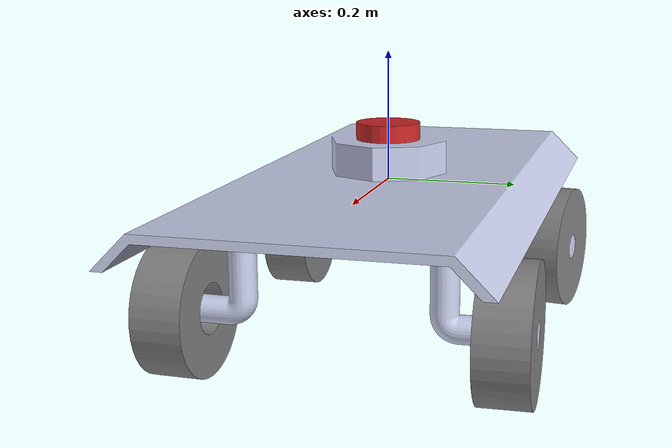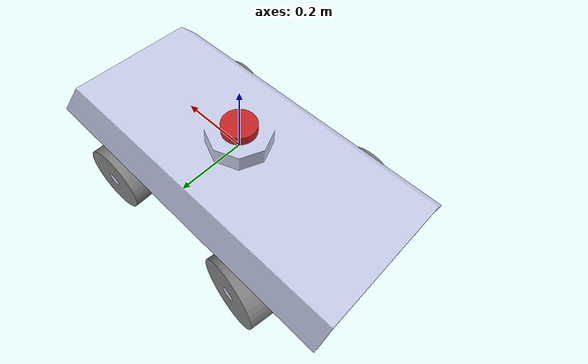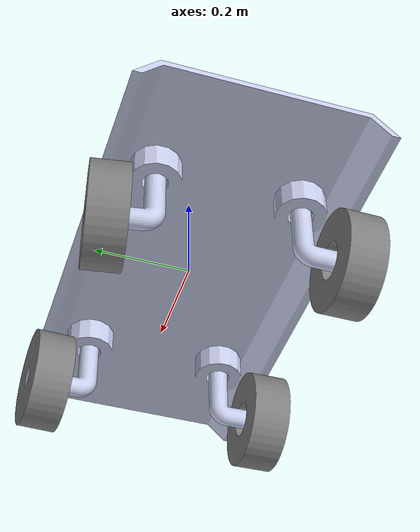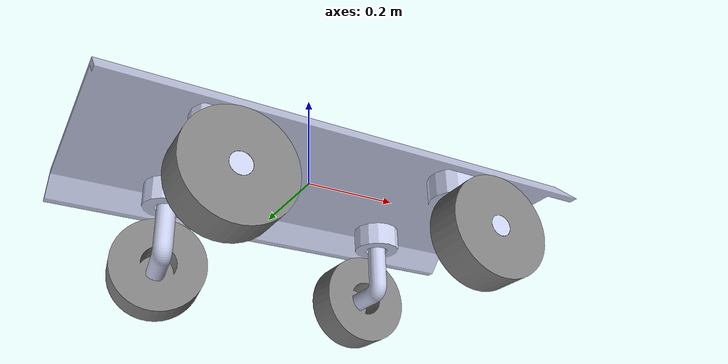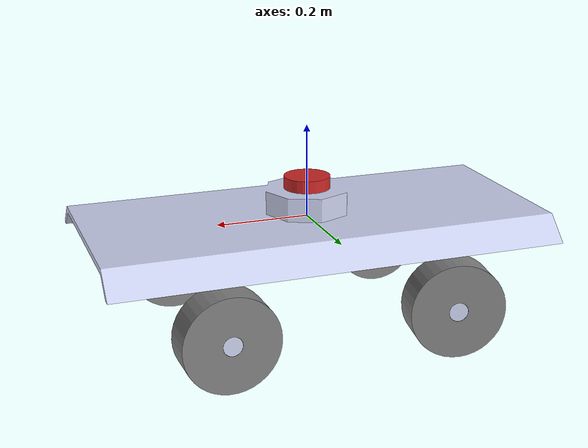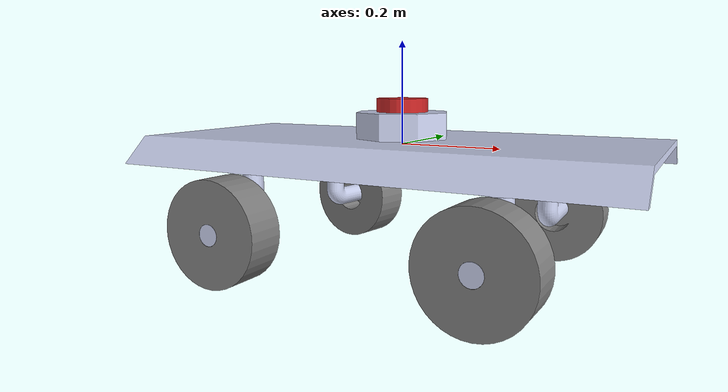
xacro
<?xml version="1.0"?>
<robot
  name="bot_car" xmlns:xacro="http://ros.org/wiki/xacro">
  # Add this before base link
    <link name="dummy_link"></link>

    # Add this after base link
    <joint name="dummy_joint" type="fixed">
        <origin rpy="0 0 0" xyz="0 0 0" />
        <parent link="dummy_link"/>
        <child link="base_link"/>
    </joint>
    <link
      name="base_link">
      <inertial>
        <origin
          xyz="0 -2.2204E-16 0.0025599"
          rpy="0 0 0" />
        <mass
          value="8.9305" />
        <inertia
          ixx="0.17655"
          ixy="2.3915E-16"
          ixz="1.4725E-17"
          iyy="0.58847"
          iyz="-7.9055E-17"
          izz="0.75707" />
      </inertial>
      <visual>
        <origin
          xyz="0 0 0"
          rpy="0 0 0" />
        <geometry>
          <mesh
            filename="package://bot_car/meshes/base_link.STL" />
        </geometry>
        <material
          name="">
          <color
            rgba="0.79216 0.81961 0.93333 1" />
        </material>
      </visual>
      <collision>
        <origin
          xyz="0 0 0"
          rpy="0 0 0" />
        <geometry>
          <mesh
            filename="package://bot_car/meshes/base_link.STL" />
        </geometry>
      </collision>
    </link>
    <link
      name="axel1_Link">
      <inertial>
        <origin
          xyz="0.02952 -7.5228E-05 0.10977"
          rpy="0 0 0" />
        <mass
          value="0.35112" />
        <inertia
          ixx="0.00094417"
          ixy="1.4331E-06"
          ixz="-0.00044245"
          iyy="0.0015065"
          iyz="1.1275E-06"
          izz="0.00063487" />
      </inertial>
      <visual>
        <origin
          xyz="0 0 0"
          rpy="0 0 0" />
        <geometry>
          <mesh
            filename="package://bot_car/meshes/axel1_Link.STL" />
        </geometry>
        <material
          name="">
          <color
            rgba="0.79216 0.81961 0.93333 1" />
        </material>
      </visual>
      <collision>
        <origin
          xyz="0 0 0"
          rpy="0 0 0" />
        <geometry>
          <mesh
            filename="package://bot_car/meshes/axel1_Link.STL" />
        </geometry>
      </collision>
    </link>
    <joint
      name="axel1_Joint"
      type="continuous">
      <origin
        xyz="-0.254 -0.14581 0"
        rpy="3.1416 0 -1.5708" />
      <parent
        link="base_link" />
      <child
        link="axel1_Link" />
      <axis
        xyz="0 0 1" />
      <limit
        lower="0"
        upper="0"
        effort="0"
        velocity="0" />
    </joint>
    <link
      name="wheel1_Link">
      <inertial>
        <origin
          xyz="0.014007 0.0017535 0.050269"
          rpy="0 0 0" />
        <mass
          value="3.2685" />
        <inertia
          ixx="0.010493"
          ixy="-0.00022424"
          ixz="3.115E-09"
          iyy="0.012393"
          iyz="-2.6758E-08"
          izz="0.015669" />
      </inertial>
      <visual>
        <origin
          xyz="0 0 0"
          rpy="0 0 0" />
        <geometry>
          <mesh
            filename="package://bot_car/meshes/wheel1_Link.STL" />
        </geometry>
        <material
          name="">
          <color
            rgba="0.50196 0.50196 0.50196 1" />
        </material>
      </visual>
      <collision>
        <origin
          xyz="0 0 0"
          rpy="0 0 0" />
        <geometry>
          <mesh
            filename="package://bot_car/meshes/wheel1_Link.STL" />
        </geometry>
      </collision>
    </link>
    <joint
      name="wheel1_Joint"
      type="continuous">
      <origin
        xyz="0.127 -0.0010668 0.1524"
        rpy="-1.5708 0 1.5682" />
      <parent
        link="axel1_Link" />
      <child
        link="wheel1_Link" />
      <axis
        xyz="0 0 1" />
      <limit
        lower="0"
        upper="0"
        effort="0"
        velocity="0" />
    </joint>
    <link
      name="axel2_Link">
      <inertial>
        <origin
          xyz="-0.0291531649114402 -0.00464108377325489 0.109770522945522"
          rpy="0 0 0" />
        <mass
          value="0.351116445713541" />
        <inertia
          ixx="0.000958064531908339"
          ixy="-8.73162668047775E-05"
          ixz="0.000436944551365717"
          iyy="0.00149264492179922"
          iyz="6.95600725792809E-05"
          izz="0.000634869701298319" />
      </inertial>
      <visual>
        <origin
          xyz="0 0 0"
          rpy="0 0 0" />
        <geometry>
          <mesh
            filename="package://bot_car/meshes/axel2_Link.STL" />
        </geometry>
        <material
          name="">
          <color
            rgba="0.792156862745098 0.819607843137255 0.933333333333333 1" />
        </material>
      </visual>
      <collision>
        <origin
          xyz="0 0 0"
          rpy="0 0 0" />
        <geometry>
          <mesh
            filename="package://bot_car/meshes/axel2_Link.STL" />
        </geometry>
      </collision>
    </link>
    <joint
      name="axel2_Joint"
      type="continuous">
      <origin
        xyz="-0.254 0.14581 0"
        rpy="-3.1416 0 -1.5708" />
      <parent
        link="base_link" />
      <child
        link="axel2_Link" />
      <axis
        xyz="0 0 1" />
      <limit
        lower="0"
        upper="0"
        effort="0"
        velocity="0" />
    </joint>
    <link
      name="wheel2_Link">
      <inertial>
        <origin
          xyz="0.0132961974963511 0.00148528277873694 0.050268710221559"
          rpy="0 0 0" />
        <mass
          value="3.26848849254688" />
        <inertia
          ixx="0.0104851129971514"
          ixy="-0.000185707204777589"
          ixz="2.57694474396428E-09"
          iyy="0.012401228265323"
          iyz="-2.68170786321244E-08"
          izz="0.0156685424424456" />
      </inertial>
      <visual>
        <origin
          xyz="0 0 0"
          rpy="0 0 0" />
        <geometry>
          <mesh
            filename="package://bot_car/meshes/wheel2_Link.STL" />
        </geometry>
        <material
          name="">
          <color
            rgba="0.501960784313725 0.501960784313725 0.501960784313725 1" />
        </material>
      </visual>
      <collision>
        <origin
          xyz="0 0 0"
          rpy="0 0 0" />
        <geometry>
          <mesh
            filename="package://bot_car/meshes/wheel2_Link.STL" />
        </geometry>
      </collision>
    </link>
    <joint
      name="wheel2_Joint"
      type="continuous">
      <origin
        xyz="-0.125420642056681 -0.0199665356556891 0.1524"
        rpy="-1.5707963267949 0 -1.41292454108719" />
      <parent
        link="axel2_Link" />
      <child
        link="wheel2_Link" />
      <axis
        xyz="0 0 1" />
      <limit
        lower="0"
        upper="0"
        effort="0"
        velocity="0" />
    </joint>
    <link
      name="axel3_Link">
      <inertial>
        <origin
          xyz="0.253324000419153 -0.175320715998941 -0.109770522945522"
          rpy="0 0 0" />
        <mass
          value="0.351116445713541" />
        <inertia
          ixx="0.00150625046620845"
          ixy="-1.28748737892474E-05"
          ixz="-1.01318101988307E-05"
          iyy="0.000944458987499111"
          iyz="-0.000442330748521417"
          izz="0.00063486970129832" />
      </inertial>
      <visual>
        <origin
          xyz="0 0 0"
          rpy="0 0 0" />
        <geometry>
          <mesh
            filename="package://bot_car/meshes/axel3_Link.STL" />
        </geometry>
        <material
          name="">
          <color
            rgba="0.792156862745098 0.819607843137255 0.933333333333333 1" />
        </material>
      </visual>
      <collision>
        <origin
          xyz="0 0 0"
          rpy="0 0 0" />
        <geometry>
          <mesh
            filename="package://bot_car/meshes/axel3_Link.STL" />
        </geometry>
      </collision>
    </link>
    <joint
      name="axel3_Joint"
      type="fixed">
      <origin
        xyz="0 0 0"
        rpy="0 0 0" />
      <parent
        link="base_link" />
      <child
        link="axel3_Link" />
      <axis
        xyz="0 0 0" />
    </joint>
    <link
      name="wheel3_Link">
      <inertial>
        <origin
          xyz="0.0133779745420139 -0.000157756019403044 0.0502687107907218"
          rpy="0 0 0" />
        <mass
          value="3.26848849254691" />
        <inertia
          ixx="0.0104687354240864"
          ixy="5.32691440691177E-05"
          ixz="-7.3555215907115E-10"
          iyy="0.0124176058723457"
          iyz="-2.69291569394582E-08"
          izz="0.0156685424761554" />
      </inertial>
      <visual>
        <origin
          xyz="0 0 0"
          rpy="0 0 0" />
        <geometry>
          <mesh
            filename="package://bot_car/meshes/wheel3_Link.STL" />
        </geometry>
        <material
          name="">
          <color
            rgba="0.501960784313725 0.501960784313725 0.501960784313725 1" />
        </material>
      </visual>
      <collision>
        <origin
          xyz="0 0 0"
          rpy="0 0 0" />
        <geometry>
          <mesh
            filename="package://bot_car/meshes/wheel3_Link.STL" />
        </geometry>
      </collision>
    </link>
    <joint
      name="wheel3_Joint"
      type="continuous">
      <origin
        xyz="0.25109 -0.27277 -0.1524"
        rpy="-1.5708 0 -0.022902" />
      <parent
        link="axel3_Link" />
      <child
        link="wheel3_Link" />
      <axis
        xyz="0 0 1" />
      <limit
        lower="0"
        upper="0"
        effort="0"
        velocity="0" />
    </joint>
    <link
      name="axel4_Link">
      <inertial>
        <origin
          xyz="0.253163090663729 0.175316591330923 -0.109770522945525"
          rpy="0 0 0" />
        <mass
          value="0.351116445713541" />
        <inertia
          ixx="0.00150609336294752"
          ixy="1.59372822940795E-05"
          ixz="-1.25435085892834E-05"
          iyy="0.000944616090760031"
          iyz="0.000442268928433477"
          izz="0.000634869701298327" />
      </inertial>
      <visual>
        <origin
          xyz="0 0 0"
          rpy="0 0 0" />
        <geometry>
          <mesh
            filename="package://bot_car/meshes/axel4_Link.STL" />
        </geometry>
        <material
          name="">
          <color
            rgba="0.792156862745098 0.819607843137255 0.933333333333333 1" />
        </material>
      </visual>
      <collision>
        <origin
          xyz="0 0 0"
          rpy="0 0 0" />
        <geometry>
          <mesh
            filename="package://bot_car/meshes/axel4_Link.STL" />
        </geometry>
      </collision>
    </link>
    <joint
      name="axel4_Joint"
      type="fixed">
      <origin
        xyz="0 0 0"
        rpy="0 0 0" />
      <parent
        link="base_link" />
      <child
        link="axel4_Link" />
      <axis
        xyz="0 0 0" />
    </joint>
    <link
      name="wheel4_Link">
      <inertial>
        <origin
          xyz="0.00199883694253689 -0.013228734221754 -0.0502687131342379"
          rpy="0 0 0" />
        <mass
          value="3.2684884925469" />
        <inertia
          ixx="0.0123661017868047"
          ixy="0.000317111301516424"
          ixz="-2.65688094473E-08"
          iyy="0.0105202395254445"
          iyz="-4.45113290820402E-09"
          izz="0.0156685424970015" />
      </inertial>
      <visual>
        <origin
          xyz="0 0 0"
          rpy="0 0 0" />
        <geometry>
          <mesh
            filename="package://bot_car/meshes/wheel4_Link.STL" />
        </geometry>
        <material
          name="">
          <color
            rgba="0.501960784313725 0.501960784313725 0.501960784313725 1" />
        </material>
      </visual>
      <collision>
        <origin
          xyz="0 0 0"
          rpy="0 0 0" />
        <geometry>
          <mesh
            filename="package://bot_car/meshes/wheel4_Link.STL" />
        </geometry>
      </collision>
    </link>
    <joint
      name="wheel4_Joint"
      type="continuous">
      <origin
        xyz="0.2504 0.27276 -0.1524"
        rpy="1.5708 0 -3.1132" />
      <parent
        link="axel4_Link" />
      <child
        link="wheel4_Link" />
      <axis
        xyz="0 0 -1" />
      <limit
        lower="0"
        upper="0"
        effort="0"
        velocity="0" />
    </joint>
#Lidar_Link and lidar_Joint added
    <joint name="laser_joint" type="fixed">
        <parent link="base_link"/>
        <child link="laser_frame"/>
        <origin xyz="0 0 0.07" rpy="0 0 0"/>
    </joint>

    <link name="laser_frame">
        <visual>
            <geometry>
                <cylinder radius="0.05" length="0.04"/>
            </geometry>
            <material name="red"/>
        </visual>
        <collision>
            <geometry>
                <cylinder radius="0.05" length="0.04"/>
            </geometry>
        </collision>
    </link>

    <gazebo reference="laser_frame">
      <sensor name="lidar" type="ray">
        <pose>0.0 0.0 0.0 0 0 0</pose>
        <always_on>true</always_on>
        <visualize>true</visualize>
        <update_rate>5</update_rate>
        <ray>
          <scan>
            <horizontal>
              <samples>360</samples>
              <resolution>1.00000</resolution>
              <min_angle>0.000000</min_angle>
              <max_angle>6.280000</max_angle>
            </horizontal>
          </scan>
          <range>
            <min>0.120000</min>
            <max>3.5</max>
            <resolution>0.015000</resolution>
          </range>
          <noise>
            <type>gaussian</type>
            <mean>0.0</mean>
            <stddev>0.01</stddev>
          </noise>
        </ray>
        <plugin name="scan" filename="libgazebo_ros_ray_sensor.so">
          <ros>
            <remapping>~/out:=scan</remapping>
          </ros>
          <output_type>sensor_msgs/LaserScan</output_type>
          <frame_name>laser_frame</frame_name>
        </plugin>
      </sensor>
      </gazebo>

      <gazebo reference="base_link">
        <gravity>true</gravity>
        <sensor name="imu_sensor" type="imu">
          <always_on>true</always_on>
          <update_rate>100</update_rate>
          <visualize>true</visualize>
          <topic>__default_topic__</topic>
          <plugin filename="libgazebo_ros_imu_sensor.so" name="imu_plugin">
            <topicName>imu</topicName>
            <bodyName>base_link</bodyName>
            <updateRateHZ>10.0</updateRateHZ>
            <gaussianNoise>0.0</gaussianNoise>
            <xyzOffset>0 0 0</xyzOffset>
            <rpyOffset>0 0 0</rpyOffset>
            <frameName>base_link</frameName>
            <initialOrientationAsReference>false</initialOrientationAsReference>
          </plugin>
          <pose>0 0 0 0 0 0</pose>
        </sensor>
      </gazebo>

#ros2_controol framework is being added

  <ros2_control name="GazeboSystem" type="system">
  <hardware>
    <plugin>gazebo_ros2_control/GazeboSystem</plugin>
  </hardware>
  <!-- Velocity Controllers for the Wheels -->
  <joint name="wheel1_Joint">
    <command_interface name="velocity">
      <param name="min">-1000.0</param>
      <param name="max">1000.0</param>
    </command_interface>
    <state_interface name="position"/>
    <state_interface name="velocity"/>
  </joint>
  <joint name="wheel2_Joint">
    <command_interface name="velocity">
      <param name="min">-1000.0</param>
      <param name="max">1000.0</param>
    </command_interface>
    <state_interface name="position"/>
    <state_interface name="velocity"/>
  </joint>
  <joint name="wheel3_Joint">
    <command_interface name="velocity">
      <param name="min">-1000.0</param>
      <param name="max">1000.0</param>
    </command_interface>
    <state_interface name="position"/>
    <state_interface name="velocity"/>
  </joint>
  <joint name="wheel4_Joint">
    <command_interface name="velocity">
      <param name="min">-1000.0</param>
      <param name="max">1000.0</param>
    </command_interface>
    <state_interface name="position"/>
    <state_interface name="velocity"/>
  </joint>
  <!-- Position Controllers for the Axles -->
  <joint name="axel1_Joint">
    <command_interface name="position">
      <param name="min">-3.14</param>
      <param name="max">3.14</param>
    </command_interface>
    <state_interface name="position"/>
    <state_interface name="velocity"/>
  </joint>
  <joint name="axel2_Joint">
    <command_interface name="position">
      <param name="min">-3.14</param>
      <param name="max">3.14</param>
    </command_interface>
    <state_interface name="position"/>
    <state_interface name="velocity"/>
  </joint>
    <!-- Fixed Axles (axel3_Joint and axel4_Joint are not actuated) -->
  </ros2_control>
  <gazebo>
    <plugin filename="libgazebo_ros2_control.so" name="gazebo_ros2_control">
        <parameters>$(find bot_car)/config/control.yaml</parameters>
    </plugin>
  </gazebo>

</robot>
